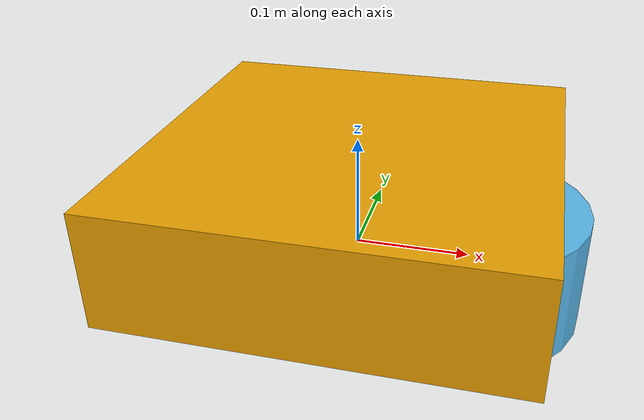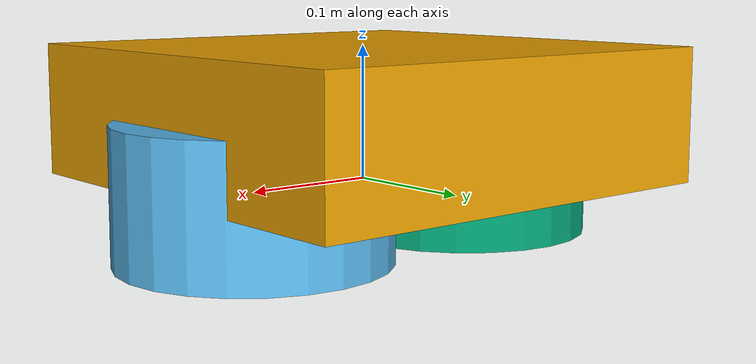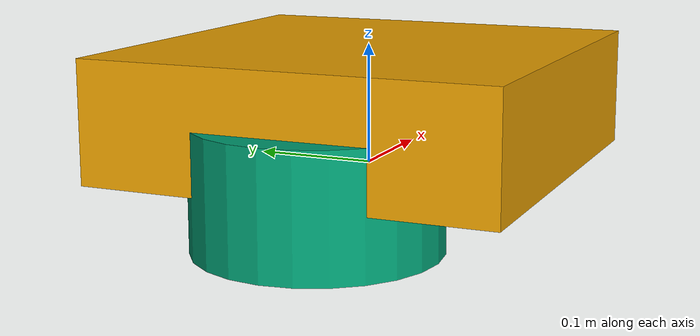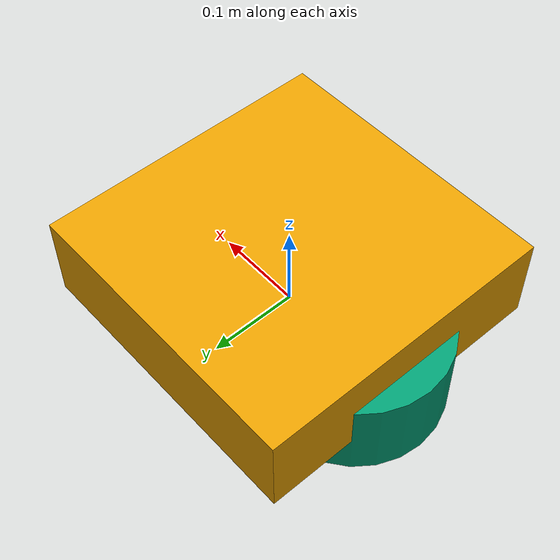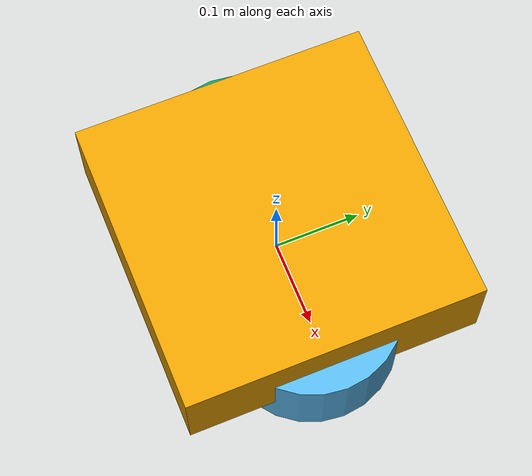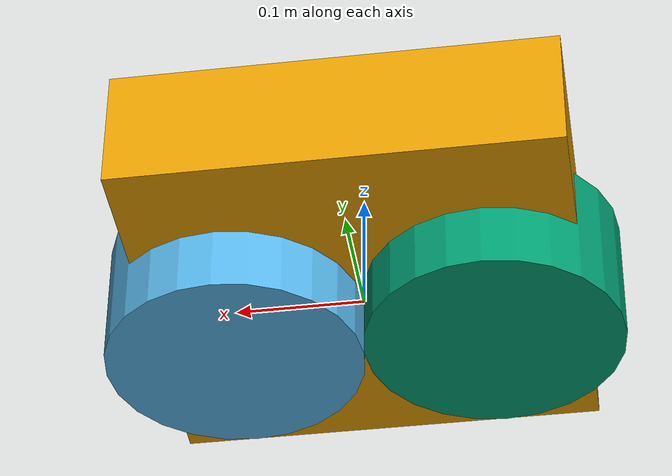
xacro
<?xml version="1.0"?>
<robot xmlns:xacro="http://ros.org/wiki/xacro" name="turtlebot3">

  <xacro:property name="base_length" value="0.34"/>
  <xacro:property name="base_width" value="0.34"/>
  <xacro:property name="wheel_radius" value="0.1"/>
  <xacro:property name="wheel_separation" value="0.2"/>

  <link name="base_link">
    <inertial>
      <mass value="5.0"/>
      <origin xyz="0 0 0.1" rpy="0 0 0"/>
      <inertia ixx="0.1" ixy="0" ixz="0" iyy="0.1" iyz="0" izz="0.1"/>
    </inertial>
    <visual>
      <geometry>
        <box size="${base_length} ${base_width} 0.1"/>
      </geometry>
      <origin xyz="0 0 0.05" rpy="0 0 0"/>
    </visual>
    <collision>
      <geometry>
        <box size="${base_length} ${base_width} 0.1"/>
      </geometry>
      <origin xyz="0 0 0.05" rpy="0 0 0"/>
    </collision>
  </link>

  <joint name="wheel_left_joint" type="revolute">
    <parent link="base_link"/>
    <child link="wheel_left"/>
    <origin xyz="${wheel_separation/2} 0 0" rpy="0 0 0"/>
    <axis xyz="0 1 0"/>
    <limit effort="10" lower="-3.14" upper="3.14" velocity="1"/>
  </joint>

  <joint name="wheel_right_joint" type="revolute">
    <parent link="base_link"/>
    <child link="wheel_right"/>
    <origin xyz="-${wheel_separation/2} 0 0" rpy="0 0 0"/>
    <axis xyz="0 1 0"/>
    <limit effort="10" lower="-3.14" upper="3.14" velocity="1"/>
  </joint>

  <link name="wheel_left">
    <visual>
      <geometry>
        <cylinder radius="${wheel_radius}" length="0.1"/>
      </geometry>
      <origin xyz="0 0 0" rpy="0 0 0"/>
    </visual>
    <collision>
      <geometry>
        <cylinder radius="${wheel_radius}" length="0.1"/>
      </geometry>
      <origin xyz="0 0 0" rpy="0 0 0"/>
    </collision>
  </link>

  <link name="wheel_right">
    <visual>
      <geometry>
        <cylinder radius="${wheel_radius}" length="0.1"/>
      </geometry>
      <origin xyz="0 0 0" rpy="0 0 0"/>
    </visual>
    <collision>
      <geometry>
        <cylinder radius="${wheel_radius}" length="0.1"/>
      </geometry>
      <origin xyz="0 0 0" rpy="0 0 0"/>
    </collision>
  </link>

  <!-- Diff drive plugin hozzáadása -->
  <gazebo>
    <plugin name="diff_drive" filename="libgazebo_ros_diff_drive.so">
      <ros>
        <namespace>/</namespace>
      </ros>
      <update_rate>50</update_rate>
      <left_wheel>wheel_left</left_wheel>
      <right_wheel>wheel_right</right_wheel>
      <wheel_separation>${wheel_separation}</wheel_separation>
      <wheel_radius>${wheel_radius}</wheel_radius>
      <command_topic>/cmd_vel</command_topic>
      <odometry_topic>/odom</odometry_topic>
      <publish_tf>true</publish_tf>
    </plugin>
  </gazebo>

</robot>
